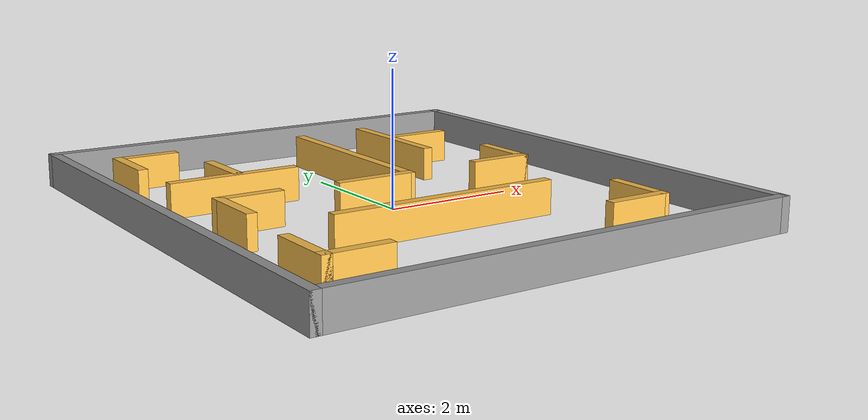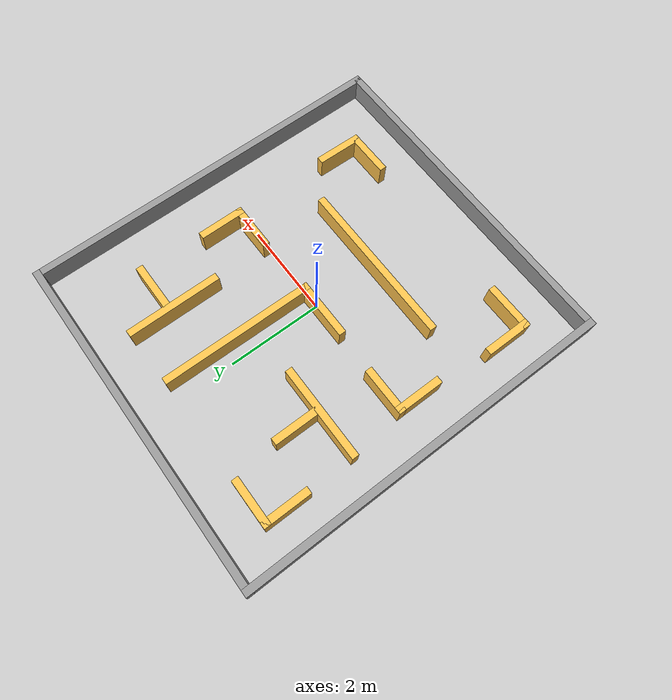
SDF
<?xml version='1.0'?>
<sdf version='1.6'>
  <model name='map1-closed'>
    <pose frame=''>0.055 0.113 0 0 -0 0</pose>
    <link name='Wall_10'>
      <collision name='Wall_10_Collision'>
        <geometry>
          <box>
            <size>2 0.15 0.5</size>
          </box>
        </geometry>
        <pose frame=''>0 0 0.25 0 -0 0</pose>
      </collision>
      <visual name='Wall_10_Visual'>
        <pose frame=''>0 0 0.25 0 -0 0</pose>
        <geometry>
          <box>
            <size>2 0.15 0.5</size>
          </box>
        </geometry>
        <material>
          <script>
            <uri>file://media/materials/scripts/gazebo.material</uri>
            <name>Gazebo/Grey</name>
          </script>
          <ambient>1 0.764706 0.305882 1</ambient>
        </material>
        <meta>
          <layer>0</layer>
        </meta>
      </visual>
      <pose frame=''>-1.895 1.165 0 0 -0 0</pose>
    </link>
    <link name='Wall_14'>
      <collision name='Wall_14_Collision'>
        <geometry>
          <box>
            <size>1 0.15 0.5</size>
          </box>
        </geometry>
        <pose frame=''>0 0 0.25 0 -0 0</pose>
      </collision>
      <visual name='Wall_14_Visual'>
        <pose frame=''>0 0 0.25 0 -0 0</pose>
        <geometry>
          <box>
            <size>1 0.15 0.5</size>
          </box>
        </geometry>
        <material>
          <script>
            <uri>file://media/materials/scripts/gazebo.material</uri>
            <name>Gazebo/Grey</name>
          </script>
          <ambient>1 0.764706 0.305882 1</ambient>
        </material>
        <meta>
          <layer>0</layer>
        </meta>
      </visual>
      <pose frame=''>-1.818 1.661 0 0 -0 -1.5708</pose>
    </link>
    <link name='Wall_16'>
      <collision name='Wall_16_Collision'>
        <geometry>
          <box>
            <size>1 0.15 0.5</size>
          </box>
        </geometry>
        <pose frame=''>0 0 0.25 0 -0 0</pose>
      </collision>
      <visual name='Wall_16_Visual'>
        <pose frame=''>0 0 0.25 0 -0 0</pose>
        <geometry>
          <box>
            <size>1 0.15 0.5</size>
          </box>
        </geometry>
        <material>
          <script>
            <uri>file://media/materials/scripts/gazebo.material</uri>
            <name>Gazebo/Grey</name>
          </script>
          <ambient>1 0.764706 0.305882 1</ambient>
        </material>
        <meta>
          <layer>0</layer>
        </meta>
      </visual>
      <pose frame=''>-2.855 2.643 0 0 -0 1.5708</pose>
    </link>
    <link name='Wall_17'>
      <collision name='Wall_17_Collision'>
        <geometry>
          <box>
            <size>1 0.15 0.5</size>
          </box>
        </geometry>
        <pose frame=''>0 0 0.25 0 -0 0</pose>
      </collision>
      <visual name='Wall_17_Visual'>
        <pose frame=''>0 0 0.25 0 -0 0</pose>
        <geometry>
          <box>
            <size>1 0.15 0.5</size>
          </box>
        </geometry>
        <material>
          <script>
            <uri>file://media/materials/scripts/gazebo.material</uri>
            <name>Gazebo/Grey</name>
          </script>
          <ambient>1 0.764706 0.305882 1</ambient>
        </material>
        <meta>
          <layer>0</layer>
        </meta>
      </visual>
      <pose frame=''>-2.43 3.068 0 0 -0 0</pose>
    </link>
    <link name='Wall_20'>
      <collision name='Wall_20_Collision'>
        <geometry>
          <box>
            <size>1.25017 0.15 0.5</size>
          </box>
        </geometry>
        <pose frame=''>0 0 0.25 0 -0 0</pose>
      </collision>
      <visual name='Wall_20_Visual'>
        <pose frame=''>0 0 0.25 0 -0 0</pose>
        <geometry>
          <box>
            <size>1.25017 0.15 0.5</size>
          </box>
        </geometry>
        <material>
          <script>
            <uri>file://media/materials/scripts/gazebo.material</uri>
            <name>Gazebo/Grey</name>
          </script>
          <ambient>1 0.764706 0.305882 1</ambient>
        </material>
        <meta>
          <layer>0</layer>
        </meta>
      </visual>
      <pose frame=''>-0.308 -0.059 0 0 -0 0</pose>
    </link>
    <link name='Wall_21'>
      <collision name='Wall_21_Collision'>
        <geometry>
          <box>
            <size>3.25 0.15 0.5</size>
          </box>
        </geometry>
        <pose frame=''>0 0 0.25 0 -0 0</pose>
      </collision>
      <visual name='Wall_21_Visual'>
        <pose frame=''>0 0 0.25 0 -0 0</pose>
        <geometry>
          <box>
            <size>3.25 0.15 0.5</size>
          </box>
        </geometry>
        <material>
          <script>
            <uri>file://media/materials/scripts/gazebo.material</uri>
            <name>Gazebo/Grey</name>
          </script>
          <ambient>1 0.764706 0.305882 1</ambient>
        </material>
        <meta>
          <layer>0</layer>
        </meta>
      </visual>
      <pose frame=''>0.255 1.491 0 0 -0 1.56241</pose>
    </link>
    <link name='Wall_23'>
      <collision name='Wall_23_Collision'>
        <geometry>
          <box>
            <size>1 0.15 0.5</size>
          </box>
        </geometry>
        <pose frame=''>0 0 0.25 0 -0 0</pose>
      </collision>
      <visual name='Wall_23_Visual'>
        <pose frame=''>0 0 0.25 0 -0 0</pose>
        <geometry>
          <box>
            <size>1 0.15 0.5</size>
          </box>
        </geometry>
        <material>
          <script>
            <uri>file://media/materials/scripts/gazebo.material</uri>
            <name>Gazebo/Grey</name>
          </script>
          <ambient>1 0.764706 0.305882 1</ambient>
        </material>
        <meta>
          <layer>0</layer>
        </meta>
      </visual>
      <pose frame=''>-2.266 -0.01 0 0 -0 3.14159</pose>
    </link>
    <link name='Wall_24'>
      <collision name='Wall_24_Collision'>
        <geometry>
          <box>
            <size>1 0.15 0.5</size>
          </box>
        </geometry>
        <pose frame=''>0 0 0.25 0 -0 0</pose>
      </collision>
      <visual name='Wall_24_Visual'>
        <pose frame=''>0 0 0.25 0 -0 0</pose>
        <geometry>
          <box>
            <size>1 0.15 0.5</size>
          </box>
        </geometry>
        <material>
          <script>
            <uri>file://media/materials/scripts/gazebo.material</uri>
            <name>Gazebo/Grey</name>
          </script>
          <ambient>1 0.764706 0.305882 1</ambient>
        </material>
        <meta>
          <layer>0</layer>
        </meta>
      </visual>
      <pose frame=''>-2.691 -0.435 0 0 -0 -1.5708</pose>
    </link>
    <link name='Wall_26'>
      <collision name='Wall_26_Collision'>
        <geometry>
          <box>
            <size>3.5 0.15 0.5</size>
          </box>
        </geometry>
        <pose frame=''>0 0 0.25 0 -0 0</pose>
      </collision>
      <visual name='Wall_26_Visual'>
        <pose frame=''>0 0 0.25 0 -0 0</pose>
        <geometry>
          <box>
            <size>3.5 0.15 0.5</size>
          </box>
        </geometry>
        <material>
          <script>
            <uri>file://media/materials/scripts/gazebo.material</uri>
            <name>Gazebo/Grey</name>
          </script>
          <ambient>1 0.764706 0.305882 1</ambient>
        </material>
        <meta>
          <layer>0</layer>
        </meta>
      </visual>
      <pose frame=''>-0.124 -1.483 0 0 -0 0</pose>
    </link>
    <link name='Wall_29'>
      <collision name='Wall_29_Collision'>
        <geometry>
          <box>
            <size>1 0.15 0.5</size>
          </box>
        </geometry>
        <pose frame=''>0 0 0.25 0 -0 0</pose>
      </collision>
      <visual name='Wall_29_Visual'>
        <pose frame=''>0 0 0.25 0 -0 0</pose>
        <geometry>
          <box>
            <size>1 0.15 0.5</size>
          </box>
        </geometry>
        <material>
          <script>
            <uri>file://media/materials/scripts/gazebo.material</uri>
            <name>Gazebo/Grey</name>
          </script>
          <ambient>1 0.764706 0.305882 1</ambient>
        </material>
        <meta>
          <layer>0</layer>
        </meta>
      </visual>
      <pose frame=''>1.938 0.009 0 0 -0 0</pose>
    </link>
    <link name='Wall_31'>
      <collision name='Wall_31_Collision'>
        <geometry>
          <box>
            <size>1 0.15 0.5</size>
          </box>
        </geometry>
        <pose frame=''>0 0 0.25 0 -0 0</pose>
      </collision>
      <visual name='Wall_31_Visual'>
        <pose frame=''>0 0 0.25 0 -0 0</pose>
        <geometry>
          <box>
            <size>1 0.15 0.5</size>
          </box>
        </geometry>
        <material>
          <script>
            <uri>file://media/materials/scripts/gazebo.material</uri>
            <name>Gazebo/Grey</name>
          </script>
          <ambient>1 0.764706 0.305882 1</ambient>
        </material>
        <meta>
          <layer>0</layer>
        </meta>
      </visual>
      <pose frame=''>2.363 0.434 0 0 -0 1.5708</pose>
    </link>
    <link name='Wall_33'>
      <collision name='Wall_33_Collision'>
        <geometry>
          <box>
            <size>2 0.15 0.5</size>
          </box>
        </geometry>
        <pose frame=''>0 0 0.25 0 -0 0</pose>
      </collision>
      <visual name='Wall_33_Visual'>
        <pose frame=''>0 0 0.25 0 -0 0</pose>
        <geometry>
          <box>
            <size>2 0.15 0.5</size>
          </box>
        </geometry>
        <material>
          <script>
            <uri>file://media/materials/scripts/gazebo.material</uri>
            <name>Gazebo/Grey</name>
          </script>
          <ambient>1 0.764706 0.305882 1</ambient>
        </material>
        <meta>
          <layer>0</layer>
        </meta>
      </visual>
      <pose frame=''>1.446 2.16 0 0 -0 -1.5708</pose>
    </link>
    <link name='Wall_35'>
      <collision name='Wall_35_Collision'>
        <geometry>
          <box>
            <size>1 0.15 0.5</size>
          </box>
        </geometry>
        <pose frame=''>0 0 0.25 0 -0 0</pose>
      </collision>
      <visual name='Wall_35_Visual'>
        <pose frame=''>0 0 0.25 0 -0 0</pose>
        <geometry>
          <box>
            <size>1 0.15 0.5</size>
          </box>
        </geometry>
        <material>
          <script>
            <uri>file://media/materials/scripts/gazebo.material</uri>
            <name>Gazebo/Grey</name>
          </script>
          <ambient>1 0.764706 0.305882 1</ambient>
        </material>
        <meta>
          <layer>0</layer>
        </meta>
      </visual>
      <pose frame=''>2.01 2.27 0 0 -0 0</pose>
    </link>
    <link name='Wall_37'>
      <collision name='Wall_37_Collision'>
        <geometry>
          <box>
            <size>1 0.15 0.5</size>
          </box>
        </geometry>
        <pose frame=''>0 0 0.25 0 -0 0</pose>
      </collision>
      <visual name='Wall_37_Visual'>
        <pose frame=''>0 0 0.25 0 -0 0</pose>
        <geometry>
          <box>
            <size>1 0.15 0.5</size>
          </box>
        </geometry>
        <material>
          <script>
            <uri>file://media/materials/scripts/gazebo.material</uri>
            <name>Gazebo/Grey</name>
          </script>
          <ambient>1 0.764706 0.305882 1</ambient>
        </material>
        <meta>
          <layer>0</layer>
        </meta>
      </visual>
      <pose frame=''>-2.825 -2.495 0 0 -0 -1.5708</pose>
    </link>
    <link name='Wall_38'>
      <collision name='Wall_38_Collision'>
        <geometry>
          <box>
            <size>1 0.15 0.5</size>
          </box>
        </geometry>
        <pose frame=''>0 0 0.25 0 -0 0</pose>
      </collision>
      <visual name='Wall_38_Visual'>
        <pose frame=''>0 0 0.25 0 -0 0</pose>
        <geometry>
          <box>
            <size>1 0.15 0.5</size>
          </box>
        </geometry>
        <material>
          <script>
            <uri>file://media/materials/scripts/gazebo.material</uri>
            <name>Gazebo/Grey</name>
          </script>
          <ambient>1 0.764706 0.305882 1</ambient>
        </material>
        <meta>
          <layer>0</layer>
        </meta>
      </visual>
      <pose frame=''>-2.4 -2.92 0 0 -0 0</pose>
    </link>
    <link name='Wall_40'>
      <collision name='Wall_40_Collision'>
        <geometry>
          <box>
            <size>0.999592 0.15 0.5</size>
          </box>
        </geometry>
        <pose frame=''>0 0 0.25 0 -0 0</pose>
      </collision>
      <visual name='Wall_40_Visual'>
        <pose frame=''>0 0 0.25 0 -0 0</pose>
        <geometry>
          <box>
            <size>0.999592 0.15 0.5</size>
          </box>
        </geometry>
        <material>
          <script>
            <uri>file://media/materials/scripts/gazebo.material</uri>
            <name>Gazebo/Grey</name>
          </script>
          <ambient>1 0.764706 0.305882 1</ambient>
        </material>
        <meta>
          <layer>0</layer>
        </meta>
      </visual>
      <pose frame=''>1.927 -2.936 0 0 -0 0</pose>
    </link>
    <link name='Wall_41'>
      <collision name='Wall_41_Collision'>
        <geometry>
          <box>
            <size>1 0.15 0.5</size>
          </box>
        </geometry>
        <pose frame=''>0 0 0.25 0 -0 0</pose>
      </collision>
      <visual name='Wall_41_Visual'>
        <pose frame=''>0 0 0.25 0 -0 0</pose>
        <geometry>
          <box>
            <size>1 0.15 0.5</size>
          </box>
        </geometry>
        <material>
          <script>
            <uri>file://media/materials/scripts/gazebo.material</uri>
            <name>Gazebo/Grey</name>
          </script>
          <ambient>1 0.764706 0.305882 1</ambient>
        </material>
        <meta>
          <layer>0</layer>
        </meta>
      </visual>
      <pose frame=''>2.3595 -2.511 0 0 -0 1.55315</pose>
    </link>
    <link name='Wall_43'>
      <collision name='Wall_43_Collision'>
        <geometry>
          <box>
            <size>7.25 0.15 0.5</size>
          </box>
        </geometry>
        <pose frame=''>0 0 0.25 0 -0 0</pose>
      </collision>
      <visual name='Wall_43_Visual'>
        <pose frame=''>0 0 0.25 0 -0 0</pose>
        <geometry>
          <box>
            <size>7.25 0.15 0.5</size>
          </box>
        </geometry>
        <material>
          <script>
            <uri>file://media/materials/scripts/gazebo.material</uri>
            <name>Gazebo/Grey</name>
          </script>
          <ambient>1 1 1 1</ambient>
        </material>
        <meta>
          <layer>0</layer>
        </meta>
      </visual>
      <pose frame=''>-0 -3.925 0 0 -0 0</pose>
    </link>
    <link name='Wall_44'>
      <collision name='Wall_44_Collision'>
        <geometry>
          <box>
            <size>8 0.15 0.5</size>
          </box>
        </geometry>
        <pose frame=''>0 0 0.25 0 -0 0</pose>
      </collision>
      <visual name='Wall_44_Visual'>
        <pose frame=''>0 0 0.25 0 -0 0</pose>
        <geometry>
          <box>
            <size>8 0.15 0.5</size>
          </box>
        </geometry>
        <material>
          <script>
            <uri>file://media/materials/scripts/gazebo.material</uri>
            <name>Gazebo/Grey</name>
          </script>
          <ambient>1 1 1 1</ambient>
        </material>
        <meta>
          <layer>0</layer>
        </meta>
      </visual>
      <pose frame=''>3.55 0 0 0 -0 1.5708</pose>
    </link>
    <link name='Wall_45'>
      <collision name='Wall_45_Collision'>
        <geometry>
          <box>
            <size>7.25 0.15 0.5</size>
          </box>
        </geometry>
        <pose frame=''>0 0 0.25 0 -0 0</pose>
      </collision>
      <visual name='Wall_45_Visual'>
        <pose frame=''>0 0 0.25 0 -0 0</pose>
        <geometry>
          <box>
            <size>7.25 0.15 0.5</size>
          </box>
        </geometry>
        <material>
          <script>
            <uri>file://media/materials/scripts/gazebo.material</uri>
            <name>Gazebo/Grey</name>
          </script>
          <ambient>1 1 1 1</ambient>
        </material>
        <meta>
          <layer>0</layer>
        </meta>
      </visual>
      <pose frame=''>-0 3.925 0 0 -0 3.14159</pose>
    </link>
    <link name='Wall_46'>
      <collision name='Wall_46_Collision'>
        <geometry>
          <box>
            <size>8 0.15 0.5</size>
          </box>
        </geometry>
        <pose frame=''>0 0 0.25 0 -0 0</pose>
      </collision>
      <visual name='Wall_46_Visual'>
        <pose frame=''>0 0 0.25 0 -0 0</pose>
        <geometry>
          <box>
            <size>8 0.15 0.5</size>
          </box>
        </geometry>
        <material>
          <script>
            <uri>file://media/materials/scripts/gazebo.material</uri>
            <name>Gazebo/Grey</name>
          </script>
          <ambient>1 1 1 1</ambient>
        </material>
        <meta>
          <layer>0</layer>
        </meta>
      </visual>
      <pose frame=''>-3.55 0 0 0 -0 -1.5708</pose>
    </link>
    <static>1</static>
  </model>
</sdf>
